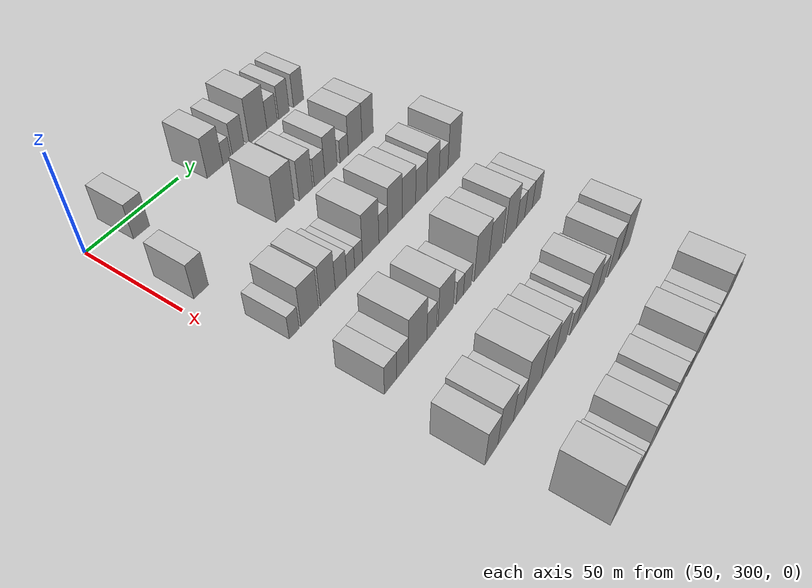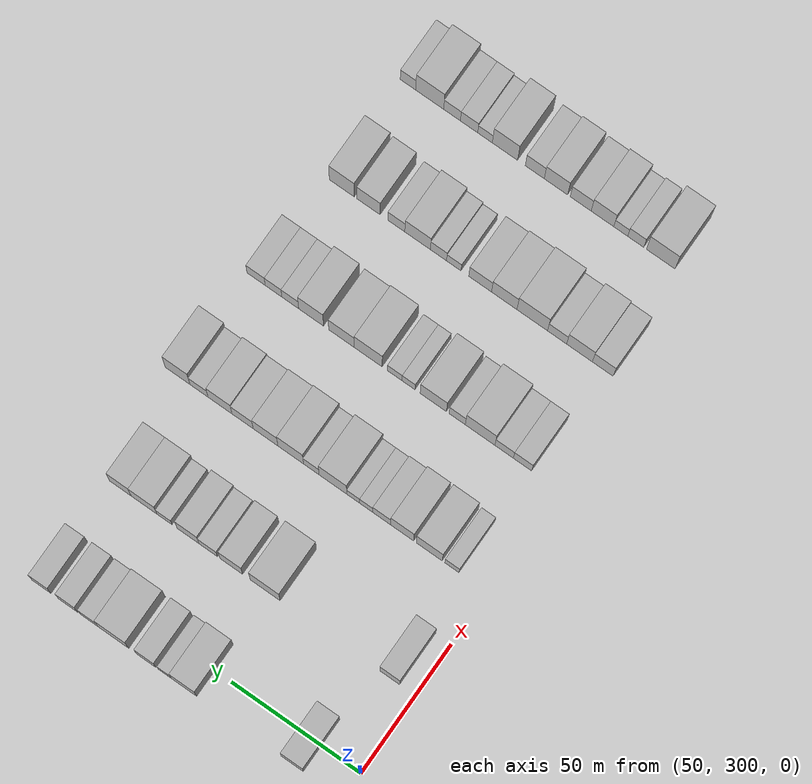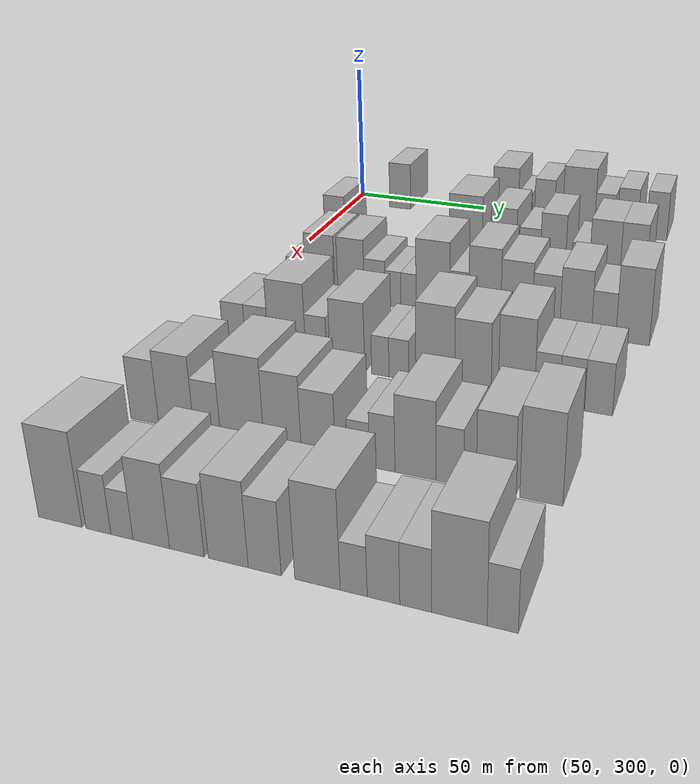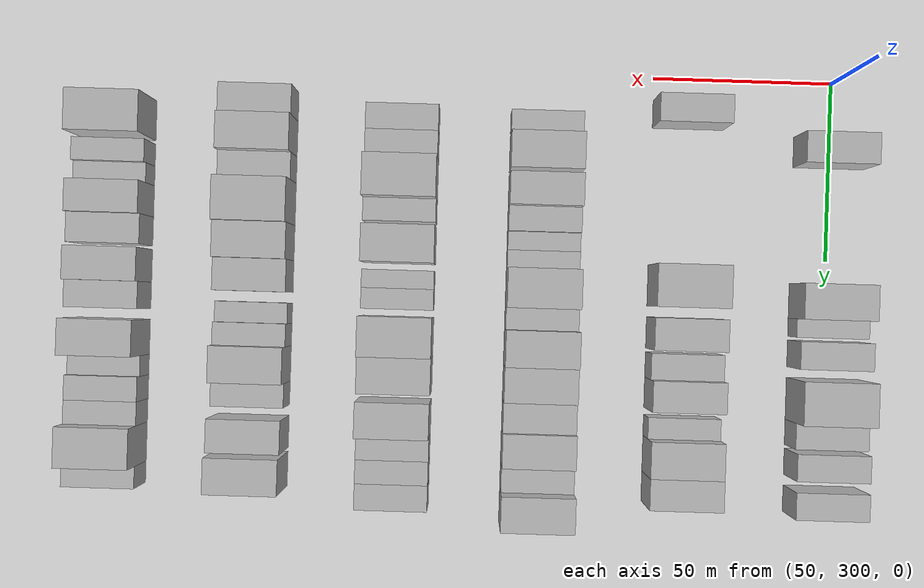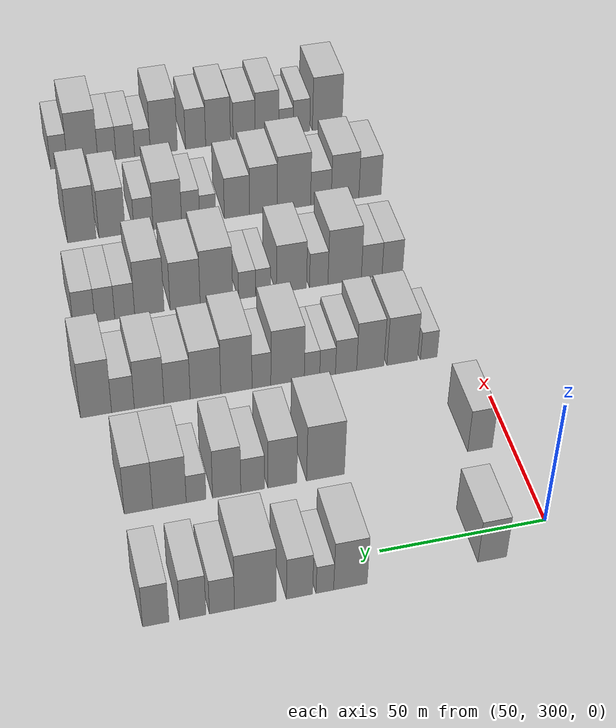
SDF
<sdf version="1.6">
 <world name="default">
  <model name="building_97">
   <static>1</static>
   <pose>50.0000 319.4888 0 0.000000 0.000000 0.000000</pose>
   <link name="link">
    <pose>0 0 9.00 0 0 0</pose>
    <collision name="collision"><geometry><box><size>20.0000 8.5619 18.0000</size></box></geometry></collision>
    <visual name="visual">
     <cast_shadows>0</cast_shadows>
     <geometry><box><size>20.0000 8.5619 18.0000</size></box></geometry>
     <material>
      <script>
       <uri>model://HANNAS_wall/materials/scripts</uri>
       <uri>model://HANNAS_wall/materials/textures</uri>
       <name>vrc/HANNAS_wall</name>
      </script>
     </material>
    </visual>
   </link>
  </model>
  <model name="building_98">
   <static>1</static>
   <pose>50.0000 361.4124 0 0.000000 0.000000 0.000000</pose>
   <link name="link">
    <pose>0 0 10.50 0 0 0</pose>
    <collision name="collision"><geometry><box><size>20.0000 9.7618 21.0000</size></box></geometry></collision>
    <visual name="visual">
     <cast_shadows>0</cast_shadows>
     <geometry><box><size>20.0000 9.7618 21.0000</size></box></geometry>
     <material>
      <script>
       <uri>model://HANNAS_wall/materials/scripts</uri>
       <uri>model://HANNAS_wall/materials/textures</uri>
       <name>vrc/HANNAS_wall</name>
      </script>
     </material>
    </visual>
   </link>
  </model>
  <model name="building_99">
   <static>1</static>
   <pose>50.0000 368.8396 0 0.000000 0.000000 0.000000</pose>
   <link name="link">
    <pose>0 0 6.00 0 0 0</pose>
    <collision name="collision"><geometry><box><size>20.0000 5.0926 12.0000</size></box></geometry></collision>
    <visual name="visual">
     <cast_shadows>0</cast_shadows>
     <geometry><box><size>20.0000 5.0926 12.0000</size></box></geometry>
     <material>
      <script>
       <uri>model://HANNAS_wall/materials/scripts</uri>
       <uri>model://HANNAS_wall/materials/textures</uri>
       <name>vrc/HANNAS_wall</name>
      </script>
     </material>
    </visual>
   </link>
  </model>
  <model name="building_100">
   <static>1</static>
   <pose>50.0000 376.1651 0 0.000000 0.000000 0.000000</pose>
   <link name="link">
    <pose>0 0 9.00 0 0 0</pose>
    <collision name="collision"><geometry><box><size>20.0000 7.5584 18.0000</size></box></geometry></collision>
    <visual name="visual">
     <cast_shadows>0</cast_shadows>
     <geometry><box><size>20.0000 7.5584 18.0000</size></box></geometry>
     <material>
      <script>
       <uri>model://HANNAS_wall/materials/scripts</uri>
       <uri>model://HANNAS_wall/materials/textures</uri>
       <name>vrc/HANNAS_wall</name>
      </script>
     </material>
    </visual>
   </link>
  </model>
  <model name="building_101">
   <static>1</static>
   <pose>50.0000 388.8733 0 0.000000 0.000000 0.000000</pose>
   <link name="link">
    <pose>0 0 12.00 0 0 0</pose>
    <collision name="collision"><geometry><box><size>20.0000 11.8580 24.0000</size></box></geometry></collision>
    <visual name="visual">
     <cast_shadows>0</cast_shadows>
     <geometry><box><size>20.0000 11.8580 24.0000</size></box></geometry>
     <material>
      <script>
       <uri>model://HANNAS_wall/materials/scripts</uri>
       <uri>model://HANNAS_wall/materials/textures</uri>
       <name>vrc/HANNAS_wall</name>
      </script>
     </material>
    </visual>
   </link>
  </model>
  <model name="building_102">
   <static>1</static>
   <pose>50.0000 398.3604 0 0.000000 0.000000 0.000000</pose>
   <link name="link">
    <pose>0 0 7.50 0 0 0</pose>
    <collision name="collision"><geometry><box><size>20.0000 7.1162 15.0000</size></box></geometry></collision>
    <visual name="visual">
     <cast_shadows>0</cast_shadows>
     <geometry><box><size>20.0000 7.1162 15.0000</size></box></geometry>
     <material>
      <script>
       <uri>model://HANNAS_wall/materials/scripts</uri>
       <uri>model://HANNAS_wall/materials/textures</uri>
       <name>vrc/HANNAS_wall</name>
      </script>
     </material>
    </visual>
   </link>
  </model>
  <model name="building_103">
   <static>1</static>
   <pose>50.0000 406.6190 0 0.000000 0.000000 0.000000</pose>
   <link name="link">
    <pose>0 0 9.00 0 0 0</pose>
    <collision name="collision"><geometry><box><size>20.0000 7.4011 18.0000</size></box></geometry></collision>
    <visual name="visual">
     <cast_shadows>0</cast_shadows>
     <geometry><box><size>20.0000 7.4011 18.0000</size></box></geometry>
     <material>
      <script>
       <uri>model://HANNAS_wall/materials/scripts</uri>
       <uri>model://HANNAS_wall/materials/textures</uri>
       <name>vrc/HANNAS_wall</name>
      </script>
     </material>
    </visual>
   </link>
  </model>
  <model name="building_104">
   <static>1</static>
   <pose>50.0000 417.0313 0 0.000000 0.000000 0.000000</pose>
   <link name="link">
    <pose>0 0 9.00 0 0 0</pose>
    <collision name="collision"><geometry><box><size>20.0000 7.4235 18.0000</size></box></geometry></collision>
    <visual name="visual">
     <cast_shadows>0</cast_shadows>
     <geometry><box><size>20.0000 7.4235 18.0000</size></box></geometry>
     <material>
      <script>
       <uri>model://HANNAS_wall/materials/scripts</uri>
       <uri>model://HANNAS_wall/materials/textures</uri>
       <name>vrc/HANNAS_wall</name>
      </script>
     </material>
    </visual>
   </link>
  </model>
  <model name="building_229">
   <static>1</static>
   <pose>90.0000 309.9746 0 0.000000 0.000000 0.000000</pose>
   <link name="link">
    <pose>0 0 9.00 0 0 0</pose>
    <collision name="collision"><geometry><box><size>20.0000 7.7425 18.0000</size></box></geometry></collision>
    <visual name="visual">
     <cast_shadows>0</cast_shadows>
     <geometry><box><size>20.0000 7.7425 18.0000</size></box></geometry>
     <material>
      <script>
       <uri>model://HANNAS_wall/materials/scripts</uri>
       <uri>model://HANNAS_wall/materials/textures</uri>
       <name>vrc/HANNAS_wall</name>
      </script>
     </material>
    </visual>
   </link>
  </model>
  <model name="building_230">
   <static>1</static>
   <pose>90.0000 358.2729 0 0.000000 0.000000 0.000000</pose>
   <link name="link">
    <pose>0 0 12.00 0 0 0</pose>
    <collision name="collision"><geometry><box><size>20.0000 11.6180 24.0000</size></box></geometry></collision>
    <visual name="visual">
     <cast_shadows>0</cast_shadows>
     <geometry><box><size>20.0000 11.6180 24.0000</size></box></geometry>
     <material>
      <script>
       <uri>model://HANNAS_wall/materials/scripts</uri>
       <uri>model://HANNAS_wall/materials/textures</uri>
       <name>vrc/HANNAS_wall</name>
      </script>
     </material>
    </visual>
   </link>
  </model>
  <model name="building_231">
   <static>1</static>
   <pose>90.0000 371.4875 0 0.000000 0.000000 0.000000</pose>
   <link name="link">
    <pose>0 0 10.50 0 0 0</pose>
    <collision name="collision"><geometry><box><size>20.0000 8.8111 21.0000</size></box></geometry></collision>
    <visual name="visual">
     <cast_shadows>0</cast_shadows>
     <geometry><box><size>20.0000 8.8111 21.0000</size></box></geometry>
     <material>
      <script>
       <uri>model://HANNAS_wall/materials/scripts</uri>
       <uri>model://HANNAS_wall/materials/textures</uri>
       <name>vrc/HANNAS_wall</name>
      </script>
     </material>
    </visual>
   </link>
  </model>
  <model name="building_232">
   <static>1</static>
   <pose>90.0000 380.5006 0 0.000000 0.000000 0.000000</pose>
   <link name="link">
    <pose>0 0 7.50 0 0 0</pose>
    <collision name="collision"><geometry><box><size>20.0000 7.2152 15.0000</size></box></geometry></collision>
    <visual name="visual">
     <cast_shadows>0</cast_shadows>
     <geometry><box><size>20.0000 7.2152 15.0000</size></box></geometry>
     <material>
      <script>
       <uri>model://HANNAS_wall/materials/scripts</uri>
       <uri>model://HANNAS_wall/materials/textures</uri>
       <name>vrc/HANNAS_wall</name>
      </script>
     </material>
    </visual>
   </link>
  </model>
  <model name="building_233">
   <static>1</static>
   <pose>90.0000 388.3572 0 0.000000 0.000000 0.000000</pose>
   <link name="link">
    <pose>0 0 10.50 0 0 0</pose>
    <collision name="collision"><geometry><box><size>20.0000 8.4979 21.0000</size></box></geometry></collision>
    <visual name="visual">
     <cast_shadows>0</cast_shadows>
     <geometry><box><size>20.0000 8.4979 21.0000</size></box></geometry>
     <material>
      <script>
       <uri>model://HANNAS_wall/materials/scripts</uri>
       <uri>model://HANNAS_wall/materials/textures</uri>
       <name>vrc/HANNAS_wall</name>
      </script>
     </material>
    </visual>
   </link>
  </model>
  <model name="building_234">
   <static>1</static>
   <pose>90.0000 397.5724 0 0.000000 0.000000 0.000000</pose>
   <link name="link">
    <pose>0 0 6.00 0 0 0</pose>
    <collision name="collision"><geometry><box><size>20.0000 5.9325 12.0000</size></box></geometry></collision>
    <visual name="visual">
     <cast_shadows>0</cast_shadows>
     <geometry><box><size>20.0000 5.9325 12.0000</size></box></geometry>
     <material>
      <script>
       <uri>model://HANNAS_wall/materials/scripts</uri>
       <uri>model://HANNAS_wall/materials/textures</uri>
       <name>vrc/HANNAS_wall</name>
      </script>
     </material>
    </visual>
   </link>
  </model>
  <model name="building_235">
   <static>1</static>
   <pose>90.0000 405.5497 0 0.000000 0.000000 0.000000</pose>
   <link name="link">
    <pose>0 0 10.50 0 0 0</pose>
    <collision name="collision"><geometry><box><size>20.0000 10.0222 21.0000</size></box></geometry></collision>
    <visual name="visual">
     <cast_shadows>0</cast_shadows>
     <geometry><box><size>20.0000 10.0222 21.0000</size></box></geometry>
     <material>
      <script>
       <uri>model://HANNAS_wall/materials/scripts</uri>
       <uri>model://HANNAS_wall/materials/textures</uri>
       <name>vrc/HANNAS_wall</name>
      </script>
     </material>
    </visual>
   </link>
  </model>
  <model name="building_236">
   <static>1</static>
   <pose>90.0000 414.7801 0 0.000000 0.000000 0.000000</pose>
   <link name="link">
    <pose>0 0 10.50 0 0 0</pose>
    <collision name="collision"><geometry><box><size>20.0000 8.4386 21.0000</size></box></geometry></collision>
    <visual name="visual">
     <cast_shadows>0</cast_shadows>
     <geometry><box><size>20.0000 8.4386 21.0000</size></box></geometry>
     <material>
      <script>
       <uri>model://HANNAS_wall/materials/scripts</uri>
       <uri>model://HANNAS_wall/materials/textures</uri>
       <name>vrc/HANNAS_wall</name>
      </script>
     </material>
    </visual>
   </link>
  </model>
  <model name="building_361">
   <static>1</static>
   <pose>130.0000 313.8919 0 0.000000 0.000000 0.000000</pose>
   <link name="link">
    <pose>0 0 6.00 0 0 0</pose>
    <collision name="collision"><geometry><box><size>20.0000 5.5212 12.0000</size></box></geometry></collision>
    <visual name="visual">
     <cast_shadows>0</cast_shadows>
     <geometry><box><size>20.0000 5.5212 12.0000</size></box></geometry>
     <material>
      <script>
       <uri>model://HANNAS_wall/materials/scripts</uri>
       <uri>model://HANNAS_wall/materials/textures</uri>
       <name>vrc/HANNAS_wall</name>
      </script>
     </material>
    </visual>
   </link>
  </model>
  <model name="building_362">
   <static>1</static>
   <pose>130.0000 322.6916 0 0.000000 0.000000 0.000000</pose>
   <link name="link">
    <pose>0 0 10.50 0 0 0</pose>
    <collision name="collision"><geometry><box><size>20.0000 10.0783 21.0000</size></box></geometry></collision>
    <visual name="visual">
     <cast_shadows>0</cast_shadows>
     <geometry><box><size>20.0000 10.0783 21.0000</size></box></geometry>
     <material>
      <script>
       <uri>model://HANNAS_wall/materials/scripts</uri>
       <uri>model://HANNAS_wall/materials/textures</uri>
       <name>vrc/HANNAS_wall</name>
      </script>
     </material>
    </visual>
   </link>
  </model>
  <model name="building_363">
   <static>1</static>
   <pose>130.0000 333.2124 0 0.000000 0.000000 0.000000</pose>
   <link name="link">
    <pose>0 0 10.50 0 0 0</pose>
    <collision name="collision"><geometry><box><size>20.0000 8.9632 21.0000</size></box></geometry></collision>
    <visual name="visual">
     <cast_shadows>0</cast_shadows>
     <geometry><box><size>20.0000 8.9632 21.0000</size></box></geometry>
     <material>
      <script>
       <uri>model://HANNAS_wall/materials/scripts</uri>
       <uri>model://HANNAS_wall/materials/textures</uri>
       <name>vrc/HANNAS_wall</name>
      </script>
     </material>
    </visual>
   </link>
  </model>
  <model name="building_364">
   <static>1</static>
   <pose>130.0000 341.1649 0 0.000000 0.000000 0.000000</pose>
   <link name="link">
    <pose>0 0 7.50 0 0 0</pose>
    <collision name="collision"><geometry><box><size>20.0000 6.9418 15.0000</size></box></geometry></collision>
    <visual name="visual">
     <cast_shadows>0</cast_shadows>
     <geometry><box><size>20.0000 6.9418 15.0000</size></box></geometry>
     <material>
      <script>
       <uri>model://HANNAS_wall/materials/scripts</uri>
       <uri>model://HANNAS_wall/materials/textures</uri>
       <name>vrc/HANNAS_wall</name>
      </script>
     </material>
    </visual>
   </link>
  </model>
  <model name="building_365">
   <static>1</static>
   <pose>130.0000 347.1981 0 0.000000 0.000000 0.000000</pose>
   <link name="link">
    <pose>0 0 6.00 0 0 0</pose>
    <collision name="collision"><geometry><box><size>20.0000 5.1246 12.0000</size></box></geometry></collision>
    <visual name="visual">
     <cast_shadows>0</cast_shadows>
     <geometry><box><size>20.0000 5.1246 12.0000</size></box></geometry>
     <material>
      <script>
       <uri>model://HANNAS_wall/materials/scripts</uri>
       <uri>model://HANNAS_wall/materials/textures</uri>
       <name>vrc/HANNAS_wall</name>
      </script>
     </material>
    </visual>
   </link>
  </model>
  <model name="building_366">
   <static>1</static>
   <pose>130.0000 352.2677 0 0.000000 0.000000 0.000000</pose>
   <link name="link">
    <pose>0 0 6.00 0 0 0</pose>
    <collision name="collision"><geometry><box><size>20.0000 5.0145 12.0000</size></box></geometry></collision>
    <visual name="visual">
     <cast_shadows>0</cast_shadows>
     <geometry><box><size>20.0000 5.0145 12.0000</size></box></geometry>
     <material>
      <script>
       <uri>model://HANNAS_wall/materials/scripts</uri>
       <uri>model://HANNAS_wall/materials/textures</uri>
       <name>vrc/HANNAS_wall</name>
      </script>
     </material>
    </visual>
   </link>
  </model>
  <model name="building_367">
   <static>1</static>
   <pose>130.0000 360.1762 0 0.000000 0.000000 0.000000</pose>
   <link name="link">
    <pose>0 0 12.00 0 0 0</pose>
    <collision name="collision"><geometry><box><size>20.0000 10.8025 24.0000</size></box></geometry></collision>
    <visual name="visual">
     <cast_shadows>0</cast_shadows>
     <geometry><box><size>20.0000 10.8025 24.0000</size></box></geometry>
     <material>
      <script>
       <uri>model://HANNAS_wall/materials/scripts</uri>
       <uri>model://HANNAS_wall/materials/textures</uri>
       <name>vrc/HANNAS_wall</name>
      </script>
     </material>
    </visual>
   </link>
  </model>
  <model name="building_368">
   <static>1</static>
   <pose>130.0000 368.6038 0 0.000000 0.000000 0.000000</pose>
   <link name="link">
    <pose>0 0 7.50 0 0 0</pose>
    <collision name="collision"><geometry><box><size>20.0000 6.0529 15.0000</size></box></geometry></collision>
    <visual name="visual">
     <cast_shadows>0</cast_shadows>
     <geometry><box><size>20.0000 6.0529 15.0000</size></box></geometry>
     <material>
      <script>
       <uri>model://HANNAS_wall/materials/scripts</uri>
       <uri>model://HANNAS_wall/materials/textures</uri>
       <name>vrc/HANNAS_wall</name>
      </script>
     </material>
    </visual>
   </link>
  </model>
  <model name="building_369">
   <static>1</static>
   <pose>130.0000 376.6238 0 0.000000 0.000000 0.000000</pose>
   <link name="link">
    <pose>0 0 12.00 0 0 0</pose>
    <collision name="collision"><geometry><box><size>20.0000 9.9871 24.0000</size></box></geometry></collision>
    <visual name="visual">
     <cast_shadows>0</cast_shadows>
     <geometry><box><size>20.0000 9.9871 24.0000</size></box></geometry>
     <material>
      <script>
       <uri>model://HANNAS_wall/materials/scripts</uri>
       <uri>model://HANNAS_wall/materials/textures</uri>
       <name>vrc/HANNAS_wall</name>
      </script>
     </material>
    </visual>
   </link>
  </model>
  <model name="building_370">
   <static>1</static>
   <pose>130.0000 386.4634 0 0.000000 0.000000 0.000000</pose>
   <link name="link">
    <pose>0 0 10.50 0 0 0</pose>
    <collision name="collision"><geometry><box><size>20.0000 9.6920 21.0000</size></box></geometry></collision>
    <visual name="visual">
     <cast_shadows>0</cast_shadows>
     <geometry><box><size>20.0000 9.6920 21.0000</size></box></geometry>
     <material>
      <script>
       <uri>model://HANNAS_wall/materials/scripts</uri>
       <uri>model://HANNAS_wall/materials/textures</uri>
       <name>vrc/HANNAS_wall</name>
      </script>
     </material>
    </visual>
   </link>
  </model>
  <model name="building_371">
   <static>1</static>
   <pose>130.0000 395.4681 0 0.000000 0.000000 0.000000</pose>
   <link name="link">
    <pose>0 0 9.00 0 0 0</pose>
    <collision name="collision"><geometry><box><size>20.0000 8.3175 18.0000</size></box></geometry></collision>
    <visual name="visual">
     <cast_shadows>0</cast_shadows>
     <geometry><box><size>20.0000 8.3175 18.0000</size></box></geometry>
     <material>
      <script>
       <uri>model://HANNAS_wall/materials/scripts</uri>
       <uri>model://HANNAS_wall/materials/textures</uri>
       <name>vrc/HANNAS_wall</name>
      </script>
     </material>
    </visual>
   </link>
  </model>
  <model name="building_372">
   <static>1</static>
   <pose>130.0000 404.3002 0 0.000000 0.000000 0.000000</pose>
   <link name="link">
    <pose>0 0 10.50 0 0 0</pose>
    <collision name="collision"><geometry><box><size>20.0000 9.3465 21.0000</size></box></geometry></collision>
    <visual name="visual">
     <cast_shadows>0</cast_shadows>
     <geometry><box><size>20.0000 9.3465 21.0000</size></box></geometry>
     <material>
      <script>
       <uri>model://HANNAS_wall/materials/scripts</uri>
       <uri>model://HANNAS_wall/materials/textures</uri>
       <name>vrc/HANNAS_wall</name>
      </script>
     </material>
    </visual>
   </link>
  </model>
  <model name="building_373">
   <static>1</static>
   <pose>130.0000 412.5269 0 0.000000 0.000000 0.000000</pose>
   <link name="link">
    <pose>0 0 7.50 0 0 0</pose>
    <collision name="collision"><geometry><box><size>20.0000 7.1069 15.0000</size></box></geometry></collision>
    <visual name="visual">
     <cast_shadows>0</cast_shadows>
     <geometry><box><size>20.0000 7.1069 15.0000</size></box></geometry>
     <material>
      <script>
       <uri>model://HANNAS_wall/materials/scripts</uri>
       <uri>model://HANNAS_wall/materials/textures</uri>
       <name>vrc/HANNAS_wall</name>
      </script>
     </material>
    </visual>
   </link>
  </model>
  <model name="building_374">
   <static>1</static>
   <pose>130.0000 420.9258 0 0.000000 0.000000 0.000000</pose>
   <link name="link">
    <pose>0 0 12.00 0 0 0</pose>
    <collision name="collision"><geometry><box><size>20.0000 9.6909 24.0000</size></box></geometry></collision>
    <visual name="visual">
     <cast_shadows>0</cast_shadows>
     <geometry><box><size>20.0000 9.6909 24.0000</size></box></geometry>
     <material>
      <script>
       <uri>model://HANNAS_wall/materials/scripts</uri>
       <uri>model://HANNAS_wall/materials/textures</uri>
       <name>vrc/HANNAS_wall</name>
      </script>
     </material>
    </visual>
   </link>
  </model>
  <model name="building_505">
   <static>1</static>
   <pose>170.0000 314.4059 0 0.000000 0.000000 0.000000</pose>
   <link name="link">
    <pose>0 0 7.50 0 0 0</pose>
    <collision name="collision"><geometry><box><size>20.0000 7.1392 15.0000</size></box></geometry></collision>
    <visual name="visual">
     <cast_shadows>0</cast_shadows>
     <geometry><box><size>20.0000 7.1392 15.0000</size></box></geometry>
     <material>
      <script>
       <uri>model://HANNAS_wall/materials/scripts</uri>
       <uri>model://HANNAS_wall/materials/textures</uri>
       <name>vrc/HANNAS_wall</name>
      </script>
     </material>
    </visual>
   </link>
  </model>
  <model name="building_506">
   <static>1</static>
   <pose>170.0000 321.5664 0 0.000000 0.000000 0.000000</pose>
   <link name="link">
    <pose>0 0 7.50 0 0 0</pose>
    <collision name="collision"><geometry><box><size>20.0000 7.1817 15.0000</size></box></geometry></collision>
    <visual name="visual">
     <cast_shadows>0</cast_shadows>
     <geometry><box><size>20.0000 7.1817 15.0000</size></box></geometry>
     <material>
      <script>
       <uri>model://HANNAS_wall/materials/scripts</uri>
       <uri>model://HANNAS_wall/materials/textures</uri>
       <name>vrc/HANNAS_wall</name>
      </script>
     </material>
    </visual>
   </link>
  </model>
  <model name="building_507">
   <static>1</static>
   <pose>170.0000 330.9106 0 0.000000 0.000000 0.000000</pose>
   <link name="link">
    <pose>0 0 12.00 0 0 0</pose>
    <collision name="collision"><geometry><box><size>20.0000 11.5068 24.0000</size></box></geometry></collision>
    <visual name="visual">
     <cast_shadows>0</cast_shadows>
     <geometry><box><size>20.0000 11.5068 24.0000</size></box></geometry>
     <material>
      <script>
       <uri>model://HANNAS_wall/materials/scripts</uri>
       <uri>model://HANNAS_wall/materials/textures</uri>
       <name>vrc/HANNAS_wall</name>
      </script>
     </material>
    </visual>
   </link>
  </model>
  <model name="building_508">
   <static>1</static>
   <pose>170.0000 339.8297 0 0.000000 0.000000 0.000000</pose>
   <link name="link">
    <pose>0 0 7.50 0 0 0</pose>
    <collision name="collision"><geometry><box><size>20.0000 6.3314 15.0000</size></box></geometry></collision>
    <visual name="visual">
     <cast_shadows>0</cast_shadows>
     <geometry><box><size>20.0000 6.3314 15.0000</size></box></geometry>
     <material>
      <script>
       <uri>model://HANNAS_wall/materials/scripts</uri>
       <uri>model://HANNAS_wall/materials/textures</uri>
       <name>vrc/HANNAS_wall</name>
      </script>
     </material>
    </visual>
   </link>
  </model>
  <model name="building_509">
   <static>1</static>
   <pose>170.0000 349.1346 0 0.000000 0.000000 0.000000</pose>
   <link name="link">
    <pose>0 0 10.50 0 0 0</pose>
    <collision name="collision"><geometry><box><size>20.0000 10.2785 21.0000</size></box></geometry></collision>
    <visual name="visual">
     <cast_shadows>0</cast_shadows>
     <geometry><box><size>20.0000 10.2785 21.0000</size></box></geometry>
     <material>
      <script>
       <uri>model://HANNAS_wall/materials/scripts</uri>
       <uri>model://HANNAS_wall/materials/textures</uri>
       <name>vrc/HANNAS_wall</name>
      </script>
     </material>
    </visual>
   </link>
  </model>
  <model name="building_510">
   <static>1</static>
   <pose>170.0000 358.8071 0 0.000000 0.000000 0.000000</pose>
   <link name="link">
    <pose>0 0 6.00 0 0 0</pose>
    <collision name="collision"><geometry><box><size>20.0000 5.0665 12.0000</size></box></geometry></collision>
    <visual name="visual">
     <cast_shadows>0</cast_shadows>
     <geometry><box><size>20.0000 5.0665 12.0000</size></box></geometry>
     <material>
      <script>
       <uri>model://HANNAS_wall/materials/scripts</uri>
       <uri>model://HANNAS_wall/materials/textures</uri>
       <name>vrc/HANNAS_wall</name>
      </script>
     </material>
    </visual>
   </link>
  </model>
  <model name="building_511">
   <static>1</static>
   <pose>170.0000 364.2109 0 0.000000 0.000000 0.000000</pose>
   <link name="link">
    <pose>0 0 6.00 0 0 0</pose>
    <collision name="collision"><geometry><box><size>20.0000 5.7411 12.0000</size></box></geometry></collision>
    <visual name="visual">
     <cast_shadows>0</cast_shadows>
     <geometry><box><size>20.0000 5.7411 12.0000</size></box></geometry>
     <material>
      <script>
       <uri>model://HANNAS_wall/materials/scripts</uri>
       <uri>model://HANNAS_wall/materials/textures</uri>
       <name>vrc/HANNAS_wall</name>
      </script>
     </material>
    </visual>
   </link>
  </model>
  <model name="building_512">
   <static>1</static>
   <pose>170.0000 374.5331 0 0.000000 0.000000 0.000000</pose>
   <link name="link">
    <pose>0 0 12.00 0 0 0</pose>
    <collision name="collision"><geometry><box><size>20.0000 10.9033 24.0000</size></box></geometry></collision>
    <visual name="visual">
     <cast_shadows>0</cast_shadows>
     <geometry><box><size>20.0000 10.9033 24.0000</size></box></geometry>
     <material>
      <script>
       <uri>model://HANNAS_wall/materials/scripts</uri>
       <uri>model://HANNAS_wall/materials/textures</uri>
       <name>vrc/HANNAS_wall</name>
      </script>
     </material>
    </visual>
   </link>
  </model>
  <model name="building_513">
   <static>1</static>
   <pose>170.0000 385.0038 0 0.000000 0.000000 0.000000</pose>
   <link name="link">
    <pose>0 0 10.50 0 0 0</pose>
    <collision name="collision"><geometry><box><size>20.0000 10.0380 21.0000</size></box></geometry></collision>
    <visual name="visual">
     <cast_shadows>0</cast_shadows>
     <geometry><box><size>20.0000 10.0380 21.0000</size></box></geometry>
     <material>
      <script>
       <uri>model://HANNAS_wall/materials/scripts</uri>
       <uri>model://HANNAS_wall/materials/textures</uri>
       <name>vrc/HANNAS_wall</name>
      </script>
     </material>
    </visual>
   </link>
  </model>
  <model name="building_514">
   <static>1</static>
   <pose>170.0000 396.9072 0 0.000000 0.000000 0.000000</pose>
   <link name="link">
    <pose>0 0 12.00 0 0 0</pose>
    <collision name="collision"><geometry><box><size>20.0000 9.7688 24.0000</size></box></geometry></collision>
    <visual name="visual">
     <cast_shadows>0</cast_shadows>
     <geometry><box><size>20.0000 9.7688 24.0000</size></box></geometry>
     <material>
      <script>
       <uri>model://HANNAS_wall/materials/scripts</uri>
       <uri>model://HANNAS_wall/materials/textures</uri>
       <name>vrc/HANNAS_wall</name>
      </script>
     </material>
    </visual>
   </link>
  </model>
  <model name="building_515">
   <static>1</static>
   <pose>170.0000 405.0901 0 0.000000 0.000000 0.000000</pose>
   <link name="link">
    <pose>0 0 7.50 0 0 0</pose>
    <collision name="collision"><geometry><box><size>20.0000 6.5969 15.0000</size></box></geometry></collision>
    <visual name="visual">
     <cast_shadows>0</cast_shadows>
     <geometry><box><size>20.0000 6.5969 15.0000</size></box></geometry>
     <material>
      <script>
       <uri>model://HANNAS_wall/materials/scripts</uri>
       <uri>model://HANNAS_wall/materials/textures</uri>
       <name>vrc/HANNAS_wall</name>
      </script>
     </material>
    </visual>
   </link>
  </model>
  <model name="building_516">
   <static>1</static>
   <pose>170.0000 411.6567 0 0.000000 0.000000 0.000000</pose>
   <link name="link">
    <pose>0 0 7.50 0 0 0</pose>
    <collision name="collision"><geometry><box><size>20.0000 6.5364 15.0000</size></box></geometry></collision>
    <visual name="visual">
     <cast_shadows>0</cast_shadows>
     <geometry><box><size>20.0000 6.5364 15.0000</size></box></geometry>
     <material>
      <script>
       <uri>model://HANNAS_wall/materials/scripts</uri>
       <uri>model://HANNAS_wall/materials/textures</uri>
       <name>vrc/HANNAS_wall</name>
      </script>
     </material>
    </visual>
   </link>
  </model>
  <model name="building_517">
   <static>1</static>
   <pose>170.0000 418.5098 0 0.000000 0.000000 0.000000</pose>
   <link name="link">
    <pose>0 0 7.50 0 0 0</pose>
    <collision name="collision"><geometry><box><size>20.0000 7.1698 15.0000</size></box></geometry></collision>
    <visual name="visual">
     <cast_shadows>0</cast_shadows>
     <geometry><box><size>20.0000 7.1698 15.0000</size></box></geometry>
     <material>
      <script>
       <uri>model://HANNAS_wall/materials/scripts</uri>
       <uri>model://HANNAS_wall/materials/textures</uri>
       <name>vrc/HANNAS_wall</name>
      </script>
     </material>
    </visual>
   </link>
  </model>
  <model name="building_643">
   <static>1</static>
   <pose>210.0000 310.9727 0 0.000000 0.000000 0.000000</pose>
   <link name="link">
    <pose>0 0 9.00 0 0 0</pose>
    <collision name="collision"><geometry><box><size>20.0000 8.0925 18.0000</size></box></geometry></collision>
    <visual name="visual">
     <cast_shadows>0</cast_shadows>
     <geometry><box><size>20.0000 8.0925 18.0000</size></box></geometry>
     <material>
      <script>
       <uri>model://HANNAS_wall/materials/scripts</uri>
       <uri>model://HANNAS_wall/materials/textures</uri>
       <name>vrc/HANNAS_wall</name>
      </script>
     </material>
    </visual>
   </link>
  </model>
  <model name="building_644">
   <static>1</static>
   <pose>210.0000 320.0397 0 0.000000 0.000000 0.000000</pose>
   <link name="link">
    <pose>0 0 10.50 0 0 0</pose>
    <collision name="collision"><geometry><box><size>20.0000 10.0415 21.0000</size></box></geometry></collision>
    <visual name="visual">
     <cast_shadows>0</cast_shadows>
     <geometry><box><size>20.0000 10.0415 21.0000</size></box></geometry>
     <material>
      <script>
       <uri>model://HANNAS_wall/materials/scripts</uri>
       <uri>model://HANNAS_wall/materials/textures</uri>
       <name>vrc/HANNAS_wall</name>
      </script>
     </material>
    </visual>
   </link>
  </model>
  <model name="building_645">
   <static>1</static>
   <pose>210.0000 328.7796 0 0.000000 0.000000 0.000000</pose>
   <link name="link">
    <pose>0 0 7.50 0 0 0</pose>
    <collision name="collision"><geometry><box><size>20.0000 7.4382 15.0000</size></box></geometry></collision>
    <visual name="visual">
     <cast_shadows>0</cast_shadows>
     <geometry><box><size>20.0000 7.4382 15.0000</size></box></geometry>
     <material>
      <script>
       <uri>model://HANNAS_wall/materials/scripts</uri>
       <uri>model://HANNAS_wall/materials/textures</uri>
       <name>vrc/HANNAS_wall</name>
      </script>
     </material>
    </visual>
   </link>
  </model>
  <model name="building_646">
   <static>1</static>
   <pose>210.0000 338.4708 0 0.000000 0.000000 0.000000</pose>
   <link name="link">
    <pose>0 0 12.00 0 0 0</pose>
    <collision name="collision"><geometry><box><size>20.0000 11.9443 24.0000</size></box></geometry></collision>
    <visual name="visual">
     <cast_shadows>0</cast_shadows>
     <geometry><box><size>20.0000 11.9443 24.0000</size></box></geometry>
     <material>
      <script>
       <uri>model://HANNAS_wall/materials/scripts</uri>
       <uri>model://HANNAS_wall/materials/textures</uri>
       <name>vrc/HANNAS_wall</name>
      </script>
     </material>
    </visual>
   </link>
  </model>
  <model name="building_647">
   <static>1</static>
   <pose>210.0000 349.4021 0 0.000000 0.000000 0.000000</pose>
   <link name="link">
    <pose>0 0 10.50 0 0 0</pose>
    <collision name="collision"><geometry><box><size>20.0000 9.9183 21.0000</size></box></geometry></collision>
    <visual name="visual">
     <cast_shadows>0</cast_shadows>
     <geometry><box><size>20.0000 9.9183 21.0000</size></box></geometry>
     <material>
      <script>
       <uri>model://HANNAS_wall/materials/scripts</uri>
       <uri>model://HANNAS_wall/materials/textures</uri>
       <name>vrc/HANNAS_wall</name>
      </script>
     </material>
    </visual>
   </link>
  </model>
  <model name="building_648">
   <static>1</static>
   <pose>210.0000 358.8251 0 0.000000 0.000000 0.000000</pose>
   <link name="link">
    <pose>0 0 9.00 0 0 0</pose>
    <collision name="collision"><geometry><box><size>20.0000 8.9278 18.0000</size></box></geometry></collision>
    <visual name="visual">
     <cast_shadows>0</cast_shadows>
     <geometry><box><size>20.0000 8.9278 18.0000</size></box></geometry>
     <material>
      <script>
       <uri>model://HANNAS_wall/materials/scripts</uri>
       <uri>model://HANNAS_wall/materials/textures</uri>
       <name>vrc/HANNAS_wall</name>
      </script>
     </material>
    </visual>
   </link>
  </model>
  <model name="building_649">
   <static>1</static>
   <pose>210.0000 369.1316 0 0.000000 0.000000 0.000000</pose>
   <link name="link">
    <pose>0 0 6.00 0 0 0</pose>
    <collision name="collision"><geometry><box><size>20.0000 5.6851 12.0000</size></box></geometry></collision>
    <visual name="visual">
     <cast_shadows>0</cast_shadows>
     <geometry><box><size>20.0000 5.6851 12.0000</size></box></geometry>
     <material>
      <script>
       <uri>model://HANNAS_wall/materials/scripts</uri>
       <uri>model://HANNAS_wall/materials/textures</uri>
       <name>vrc/HANNAS_wall</name>
      </script>
     </material>
    </visual>
   </link>
  </model>
  <model name="building_650">
   <static>1</static>
   <pose>210.0000 375.1405 0 0.000000 0.000000 0.000000</pose>
   <link name="link">
    <pose>0 0 7.50 0 0 0</pose>
    <collision name="collision"><geometry><box><size>20.0000 6.3328 15.0000</size></box></geometry></collision>
    <visual name="visual">
     <cast_shadows>0</cast_shadows>
     <geometry><box><size>20.0000 6.3328 15.0000</size></box></geometry>
     <material>
      <script>
       <uri>model://HANNAS_wall/materials/scripts</uri>
       <uri>model://HANNAS_wall/materials/textures</uri>
       <name>vrc/HANNAS_wall</name>
      </script>
     </material>
    </visual>
   </link>
  </model>
  <model name="building_651">
   <static>1</static>
   <pose>210.0000 383.3123 0 0.000000 0.000000 0.000000</pose>
   <link name="link">
    <pose>0 0 10.50 0 0 0</pose>
    <collision name="collision"><geometry><box><size>20.0000 10.0109 21.0000</size></box></geometry></collision>
    <visual name="visual">
     <cast_shadows>0</cast_shadows>
     <geometry><box><size>20.0000 10.0109 21.0000</size></box></geometry>
     <material>
      <script>
       <uri>model://HANNAS_wall/materials/scripts</uri>
       <uri>model://HANNAS_wall/materials/textures</uri>
       <name>vrc/HANNAS_wall</name>
      </script>
     </material>
    </visual>
   </link>
  </model>
  <model name="building_652">
   <static>1</static>
   <pose>210.0000 391.6547 0 0.000000 0.000000 0.000000</pose>
   <link name="link">
    <pose>0 0 7.50 0 0 0</pose>
    <collision name="collision"><geometry><box><size>20.0000 6.6739 15.0000</size></box></geometry></collision>
    <visual name="visual">
     <cast_shadows>0</cast_shadows>
     <geometry><box><size>20.0000 6.6739 15.0000</size></box></geometry>
     <material>
      <script>
       <uri>model://HANNAS_wall/materials/scripts</uri>
       <uri>model://HANNAS_wall/materials/textures</uri>
       <name>vrc/HANNAS_wall</name>
      </script>
     </material>
    </visual>
   </link>
  </model>
  <model name="building_653">
   <static>1</static>
   <pose>210.0000 402.5762 0 0.000000 0.000000 0.000000</pose>
   <link name="link">
    <pose>0 0 10.50 0 0 0</pose>
    <collision name="collision"><geometry><box><size>20.0000 9.1692 21.0000</size></box></geometry></collision>
    <visual name="visual">
     <cast_shadows>0</cast_shadows>
     <geometry><box><size>20.0000 9.1692 21.0000</size></box></geometry>
     <material>
      <script>
       <uri>model://HANNAS_wall/materials/scripts</uri>
       <uri>model://HANNAS_wall/materials/textures</uri>
       <name>vrc/HANNAS_wall</name>
      </script>
     </material>
    </visual>
   </link>
  </model>
  <model name="building_654">
   <static>1</static>
   <pose>210.0000 413.0757 0 0.000000 0.000000 0.000000</pose>
   <link name="link">
    <pose>0 0 12.00 0 0 0</pose>
    <collision name="collision"><geometry><box><size>20.0000 9.8297 24.0000</size></box></geometry></collision>
    <visual name="visual">
     <cast_shadows>0</cast_shadows>
     <geometry><box><size>20.0000 9.8297 24.0000</size></box></geometry>
     <material>
      <script>
       <uri>model://HANNAS_wall/materials/scripts</uri>
       <uri>model://HANNAS_wall/materials/textures</uri>
       <name>vrc/HANNAS_wall</name>
      </script>
     </material>
    </visual>
   </link>
  </model>
  <model name="building_783">
   <static>1</static>
   <pose>250.0000 316.0754 0 0.000000 0.000000 0.000000</pose>
   <link name="link">
    <pose>0 0 12.00 0 0 0</pose>
    <collision name="collision"><geometry><box><size>20.0000 11.1777 24.0000</size></box></geometry></collision>
    <visual name="visual">
     <cast_shadows>0</cast_shadows>
     <geometry><box><size>20.0000 11.1777 24.0000</size></box></geometry>
     <material>
      <script>
       <uri>model://HANNAS_wall/materials/scripts</uri>
       <uri>model://HANNAS_wall/materials/textures</uri>
       <name>vrc/HANNAS_wall</name>
      </script>
     </material>
    </visual>
   </link>
  </model>
  <model name="building_784">
   <static>1</static>
   <pose>250.0000 325.8020 0 0.000000 0.000000 0.000000</pose>
   <link name="link">
    <pose>0 0 7.50 0 0 0</pose>
    <collision name="collision"><geometry><box><size>20.0000 6.2756 15.0000</size></box></geometry></collision>
    <visual name="visual">
     <cast_shadows>0</cast_shadows>
     <geometry><box><size>20.0000 6.2756 15.0000</size></box></geometry>
     <material>
      <script>
       <uri>model://HANNAS_wall/materials/scripts</uri>
       <uri>model://HANNAS_wall/materials/textures</uri>
       <name>vrc/HANNAS_wall</name>
      </script>
     </material>
    </visual>
   </link>
  </model>
  <model name="building_785">
   <static>1</static>
   <pose>250.0000 331.6673 0 0.000000 0.000000 0.000000</pose>
   <link name="link">
    <pose>0 0 6.00 0 0 0</pose>
    <collision name="collision"><geometry><box><size>20.0000 5.4550 12.0000</size></box></geometry></collision>
    <visual name="visual">
     <cast_shadows>0</cast_shadows>
     <geometry><box><size>20.0000 5.4550 12.0000</size></box></geometry>
     <material>
      <script>
       <uri>model://HANNAS_wall/materials/scripts</uri>
       <uri>model://HANNAS_wall/materials/textures</uri>
       <name>vrc/HANNAS_wall</name>
      </script>
     </material>
    </visual>
   </link>
  </model>
  <model name="building_786">
   <static>1</static>
   <pose>250.0000 338.8204 0 0.000000 0.000000 0.000000</pose>
   <link name="link">
    <pose>0 0 10.50 0 0 0</pose>
    <collision name="collision"><geometry><box><size>20.0000 8.8511 21.0000</size></box></geometry></collision>
    <visual name="visual">
     <cast_shadows>0</cast_shadows>
     <geometry><box><size>20.0000 8.8511 21.0000</size></box></geometry>
     <material>
      <script>
       <uri>model://HANNAS_wall/materials/scripts</uri>
       <uri>model://HANNAS_wall/materials/textures</uri>
       <name>vrc/HANNAS_wall</name>
      </script>
     </material>
    </visual>
   </link>
  </model>
  <model name="building_787">
   <static>1</static>
   <pose>250.0000 347.3316 0 0.000000 0.000000 0.000000</pose>
   <link name="link">
    <pose>0 0 9.00 0 0 0</pose>
    <collision name="collision"><geometry><box><size>20.0000 8.1714 18.0000</size></box></geometry></collision>
    <visual name="visual">
     <cast_shadows>0</cast_shadows>
     <geometry><box><size>20.0000 8.1714 18.0000</size></box></geometry>
     <material>
      <script>
       <uri>model://HANNAS_wall/materials/scripts</uri>
       <uri>model://HANNAS_wall/materials/textures</uri>
       <name>vrc/HANNAS_wall</name>
      </script>
     </material>
    </visual>
   </link>
  </model>
  <model name="building_788">
   <static>1</static>
   <pose>250.0000 357.0108 0 0.000000 0.000000 0.000000</pose>
   <link name="link">
    <pose>0 0 10.50 0 0 0</pose>
    <collision name="collision"><geometry><box><size>20.0000 9.1869 21.0000</size></box></geometry></collision>
    <visual name="visual">
     <cast_shadows>0</cast_shadows>
     <geometry><box><size>20.0000 9.1869 21.0000</size></box></geometry>
     <material>
      <script>
       <uri>model://HANNAS_wall/materials/scripts</uri>
       <uri>model://HANNAS_wall/materials/textures</uri>
       <name>vrc/HANNAS_wall</name>
      </script>
     </material>
    </visual>
   </link>
  </model>
  <model name="building_789">
   <static>1</static>
   <pose>250.0000 365.3234 0 0.000000 0.000000 0.000000</pose>
   <link name="link">
    <pose>0 0 9.00 0 0 0</pose>
    <collision name="collision"><geometry><box><size>20.0000 7.4385 18.0000</size></box></geometry></collision>
    <visual name="visual">
     <cast_shadows>0</cast_shadows>
     <geometry><box><size>20.0000 7.4385 18.0000</size></box></geometry>
     <material>
      <script>
       <uri>model://HANNAS_wall/materials/scripts</uri>
       <uri>model://HANNAS_wall/materials/textures</uri>
       <name>vrc/HANNAS_wall</name>
      </script>
     </material>
    </visual>
   </link>
  </model>
  <model name="building_790">
   <static>1</static>
   <pose>250.0000 376.9997 0 0.000000 0.000000 0.000000</pose>
   <link name="link">
    <pose>0 0 12.00 0 0 0</pose>
    <collision name="collision"><geometry><box><size>20.0000 9.9141 24.0000</size></box></geometry></collision>
    <visual name="visual">
     <cast_shadows>0</cast_shadows>
     <geometry><box><size>20.0000 9.9141 24.0000</size></box></geometry>
     <material>
      <script>
       <uri>model://HANNAS_wall/materials/scripts</uri>
       <uri>model://HANNAS_wall/materials/textures</uri>
       <name>vrc/HANNAS_wall</name>
      </script>
     </material>
    </visual>
   </link>
  </model>
  <model name="building_791">
   <static>1</static>
   <pose>250.0000 384.8294 0 0.000000 0.000000 0.000000</pose>
   <link name="link">
    <pose>0 0 6.00 0 0 0</pose>
    <collision name="collision"><geometry><box><size>20.0000 5.7453 12.0000</size></box></geometry></collision>
    <visual name="visual">
     <cast_shadows>0</cast_shadows>
     <geometry><box><size>20.0000 5.7453 12.0000</size></box></geometry>
     <material>
      <script>
       <uri>model://HANNAS_wall/materials/scripts</uri>
       <uri>model://HANNAS_wall/materials/textures</uri>
       <name>vrc/HANNAS_wall</name>
      </script>
     </material>
    </visual>
   </link>
  </model>
  <model name="building_792">
   <static>1</static>
   <pose>250.0000 391.1022 0 0.000000 0.000000 0.000000</pose>
   <link name="link">
    <pose>0 0 7.50 0 0 0</pose>
    <collision name="collision"><geometry><box><size>20.0000 6.8003 15.0000</size></box></geometry></collision>
    <visual name="visual">
     <cast_shadows>0</cast_shadows>
     <geometry><box><size>20.0000 6.8003 15.0000</size></box></geometry>
     <material>
      <script>
       <uri>model://HANNAS_wall/materials/scripts</uri>
       <uri>model://HANNAS_wall/materials/textures</uri>
       <name>vrc/HANNAS_wall</name>
      </script>
     </material>
    </visual>
   </link>
  </model>
  <model name="building_793">
   <static>1</static>
   <pose>250.0000 397.7871 0 0.000000 0.000000 0.000000</pose>
   <link name="link">
    <pose>0 0 7.50 0 0 0</pose>
    <collision name="collision"><geometry><box><size>20.0000 6.5695 15.0000</size></box></geometry></collision>
    <visual name="visual">
     <cast_shadows>0</cast_shadows>
     <geometry><box><size>20.0000 6.5695 15.0000</size></box></geometry>
     <material>
      <script>
       <uri>model://HANNAS_wall/materials/scripts</uri>
       <uri>model://HANNAS_wall/materials/textures</uri>
       <name>vrc/HANNAS_wall</name>
      </script>
     </material>
    </visual>
   </link>
  </model>
  <model name="building_794">
   <static>1</static>
   <pose>250.0000 406.5885 0 0.000000 0.000000 0.000000</pose>
   <link name="link">
    <pose>0 0 12.00 0 0 0</pose>
    <collision name="collision"><geometry><box><size>20.0000 11.0333 24.0000</size></box></geometry></collision>
    <visual name="visual">
     <cast_shadows>0</cast_shadows>
     <geometry><box><size>20.0000 11.0333 24.0000</size></box></geometry>
     <material>
      <script>
       <uri>model://HANNAS_wall/materials/scripts</uri>
       <uri>model://HANNAS_wall/materials/textures</uri>
       <name>vrc/HANNAS_wall</name>
      </script>
     </material>
    </visual>
   </link>
  </model>
  <model name="building_795">
   <static>1</static>
   <pose>250.0000 415.1516 0 0.000000 0.000000 0.000000</pose>
   <link name="link">
    <pose>0 0 7.50 0 0 0</pose>
    <collision name="collision"><geometry><box><size>20.0000 6.0928 15.0000</size></box></geometry></collision>
    <visual name="visual">
     <cast_shadows>0</cast_shadows>
     <geometry><box><size>20.0000 6.0928 15.0000</size></box></geometry>
     <material>
      <script>
       <uri>model://HANNAS_wall/materials/scripts</uri>
       <uri>model://HANNAS_wall/materials/textures</uri>
       <name>vrc/HANNAS_wall</name>
      </script>
     </material>
    </visual>
   </link>
  </model>
 </world>
</sdf>
